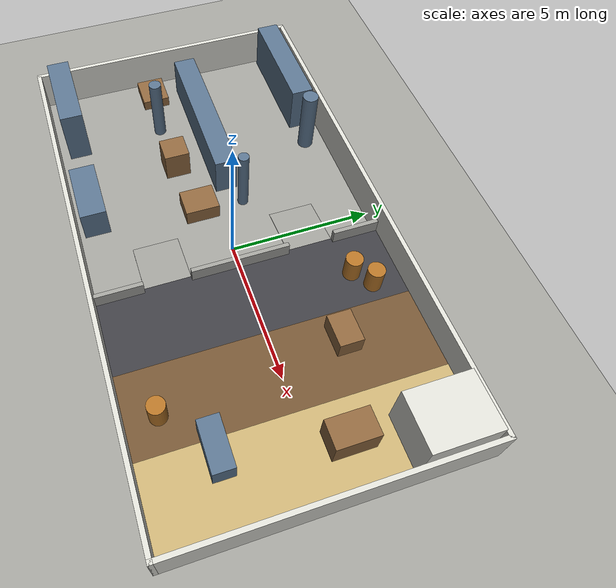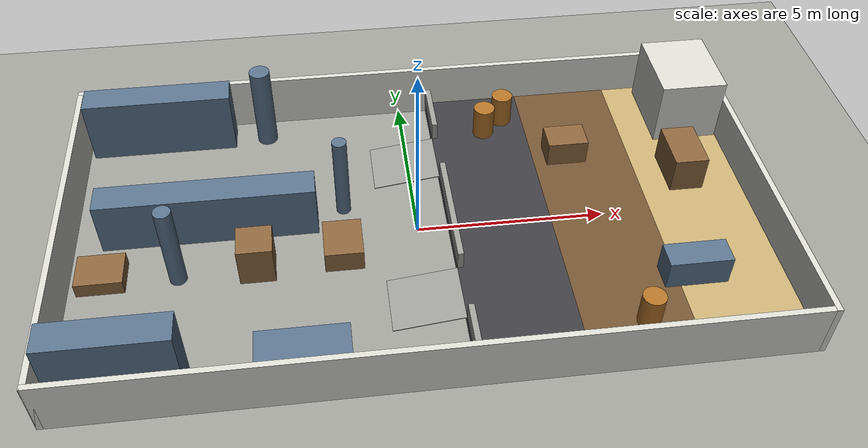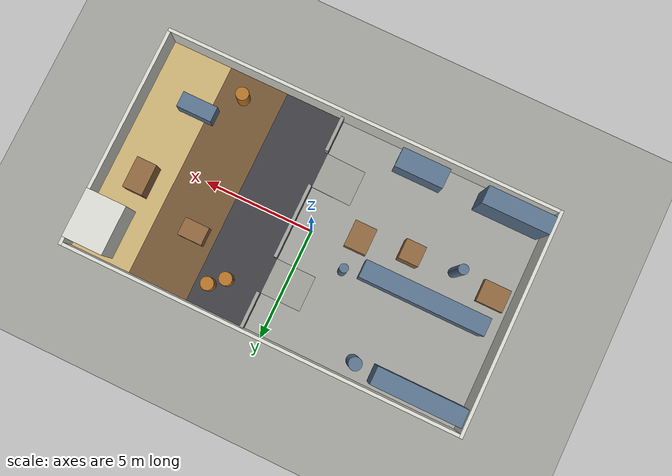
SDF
<sdf version='1.9'>
  <world name='default'>

    <plugin filename="gz-sim-physics-system" name="gz::sim::systems::Physics"/>
    <plugin filename="gz-sim-scene-broadcaster-system" name="gz::sim::systems::SceneBroadcaster"/>
    <plugin filename="gz-sim-user-commands-system" name="gz::sim::systems::UserCommands"/>
    <plugin filename="gz-sim-sensors-system" name="gz::sim::systems::Sensors">
      <render_engine>ogre2</render_engine>
    </plugin>
    <plugin filename="gz-sim-contact-system" name="gz::sim::systems::Contact"/>
    <plugin filename="gz-sim-imu-system" name="gz::sim::systems::Imu"/>

    <gravity>0 0 -9.8</gravity>
    <physics name='default_physics' type='ode'>
      <max_step_size>0.001</max_step_size>
      <real_time_factor>1.0</real_time_factor>
      <real_time_update_rate>1000</real_time_update_rate>
    </physics>

    <scene>
      <ambient>0.55 0.55 0.55 1</ambient>
      <background>0.75 0.80 0.85 1</background>
      <shadows>true</shadows>
    </scene>

    <light type='directional' name='sun'>
      <cast_shadows>true</cast_shadows>
      <pose>0 0 10 0 0 0</pose>
      <diffuse>0.9 0.9 0.9 1</diffuse>
      <specular>0.2 0.2 0.2 1</specular>
      <attenuation>
        <range>1000</range>
        <constant>0.9</constant>
        <linear>0.01</linear>
        <quadratic>0.001</quadratic>
      </attenuation>
      <direction>-0.4 0.3 -0.9</direction>
    </light>

    <model name='ground_plane'>
      <static>true</static>
      <link name='link'>
        <collision name='collision'>
          <geometry><plane><normal>0 0 1</normal><size>100 100</size></plane></geometry>
          <surface>
            <friction>
              <ode>
                <mu>1.0</mu>
                <mu2>1.0</mu2>
              </ode>
            </friction>
          </surface>
        </collision>
        <visual name='visual'>
          <geometry><plane><normal>0 0 1</normal><size>100 100</size></plane></geometry>
          <material>
            <ambient>0.310 0.310 0.300 1</ambient>
            <diffuse>0.620 0.620 0.600 1</diffuse>
            <specular>0.05 0.05 0.05 1</specular>
          </material>
        </visual>
      </link>
    </model>

    <model name='wall_west'>
      <static>true</static>
      <pose>-9.00000 0.00000 0.75000 0 0.000000 0</pose>
      <link name='link'>
        <collision name='collision'>
          <geometry><box><size>0.15000 10.15000 1.50000</size></box></geometry>
          <surface>
            <friction>
              <ode>
                <mu>1.0</mu>
                <mu2>1.0</mu2>
              </ode>
            </friction>
          </surface>
        </collision>
        <visual name='visual'>
          <geometry><box><size>0.15000 10.15000 1.50000</size></box></geometry>
          <material>
            <ambient>0.425 0.425 0.410 1</ambient>
            <diffuse>0.850 0.850 0.820 1</diffuse>
            <specular>0.1 0.1 0.1 1</specular>
          </material>
        </visual>
      </link>
    </model>
    <model name='wall_east'>
      <static>true</static>
      <pose>9.00000 0.00000 0.75000 0 0.000000 0</pose>
      <link name='link'>
        <collision name='collision'>
          <geometry><box><size>0.15000 10.15000 1.50000</size></box></geometry>
          <surface>
            <friction>
              <ode>
                <mu>1.0</mu>
                <mu2>1.0</mu2>
              </ode>
            </friction>
          </surface>
        </collision>
        <visual name='visual'>
          <geometry><box><size>0.15000 10.15000 1.50000</size></box></geometry>
          <material>
            <ambient>0.425 0.425 0.410 1</ambient>
            <diffuse>0.850 0.850 0.820 1</diffuse>
            <specular>0.1 0.1 0.1 1</specular>
          </material>
        </visual>
      </link>
    </model>
    <model name='wall_south'>
      <static>true</static>
      <pose>0.00000 -5.00000 0.75000 0 0.000000 0</pose>
      <link name='link'>
        <collision name='collision'>
          <geometry><box><size>18.15000 0.15000 1.50000</size></box></geometry>
          <surface>
            <friction>
              <ode>
                <mu>1.0</mu>
                <mu2>1.0</mu2>
              </ode>
            </friction>
          </surface>
        </collision>
        <visual name='visual'>
          <geometry><box><size>18.15000 0.15000 1.50000</size></box></geometry>
          <material>
            <ambient>0.425 0.425 0.410 1</ambient>
            <diffuse>0.850 0.850 0.820 1</diffuse>
            <specular>0.1 0.1 0.1 1</specular>
          </material>
        </visual>
      </link>
    </model>
    <model name='wall_north'>
      <static>true</static>
      <pose>0.00000 5.00000 0.75000 0 0.000000 0</pose>
      <link name='link'>
        <collision name='collision'>
          <geometry><box><size>18.15000 0.15000 1.50000</size></box></geometry>
          <surface>
            <friction>
              <ode>
                <mu>1.0</mu>
                <mu2>1.0</mu2>
              </ode>
            </friction>
          </surface>
        </collision>
        <visual name='visual'>
          <geometry><box><size>18.15000 0.15000 1.50000</size></box></geometry>
          <material>
            <ambient>0.425 0.425 0.410 1</ambient>
            <diffuse>0.850 0.850 0.820 1</diffuse>
            <specular>0.1 0.1 0.1 1</specular>
          </material>
        </visual>
      </link>
    </model>
    <model name='ramp_north'>
      <static>true</static>
      <pose>-0.09857 2.50000 0.14021 0 -0.143339 0</pose>
      <link name='link'>
        <collision name='collision'>
          <geometry><box><size>1.81865 1.60000 0.02000</size></box></geometry>
          <surface>
            <friction>
              <ode>
                <mu>1.0</mu>
                <mu2>1.0</mu2>
              </ode>
            </friction>
          </surface>
        </collision>
        <visual name='visual'>
          <geometry><box><size>1.81865 1.60000 0.02000</size></box></geometry>
          <material>
            <ambient>0.310 0.310 0.300 1</ambient>
            <diffuse>0.620 0.620 0.600 1</diffuse>
            <specular>0.1 0.1 0.1 1</specular>
          </material>
        </visual>
      </link>
    </model>
    <model name='ramp_south'>
      <static>true</static>
      <pose>-0.09857 -2.50000 0.14021 0 -0.143339 0</pose>
      <link name='link'>
        <collision name='collision'>
          <geometry><box><size>1.81865 1.60000 0.02000</size></box></geometry>
          <surface>
            <friction>
              <ode>
                <mu>1.0</mu>
                <mu2>1.0</mu2>
              </ode>
            </friction>
          </surface>
        </collision>
        <visual name='visual'>
          <geometry><box><size>1.81865 1.60000 0.02000</size></box></geometry>
          <material>
            <ambient>0.310 0.310 0.300 1</ambient>
            <diffuse>0.620 0.620 0.600 1</diffuse>
            <specular>0.1 0.1 0.1 1</specular>
          </material>
        </visual>
      </link>
    </model>
    <model name='yard_asphalt'>
      <static>true</static>
      <pose>2.15000 0.00000 0.14000 0 0.000000 0</pose>
      <link name='link'>
        <collision name='collision'>
          <geometry><box><size>2.70000 10.00000 0.28000</size></box></geometry>
          <surface>
            <friction>
              <ode>
                <mu>0.9</mu>
                <mu2>0.9</mu2>
              </ode>
            </friction>
          </surface>
        </collision>
        <visual name='visual'>
          <geometry><box><size>2.70000 10.00000 0.28000</size></box></geometry>
          <material>
            <ambient>0.120 0.120 0.130 1</ambient>
            <diffuse>0.240 0.240 0.260 1</diffuse>
            <specular>0.1 0.1 0.1 1</specular>
          </material>
        </visual>
      </link>
    </model>
    <model name='yard_dirt'>
      <static>true</static>
      <pose>4.85000 0.00000 0.14000 0 0.000000 0</pose>
      <link name='link'>
        <collision name='collision'>
          <geometry><box><size>2.70000 10.00000 0.28000</size></box></geometry>
          <surface>
            <friction>
              <ode>
                <mu>0.55</mu>
                <mu2>0.55</mu2>
              </ode>
            </friction>
          </surface>
        </collision>
        <visual name='visual'>
          <geometry><box><size>2.70000 10.00000 0.28000</size></box></geometry>
          <material>
            <ambient>0.225 0.165 0.100 1</ambient>
            <diffuse>0.450 0.330 0.200 1</diffuse>
            <specular>0.1 0.1 0.1 1</specular>
          </material>
        </visual>
      </link>
    </model>
    <model name='yard_sand'>
      <static>true</static>
      <pose>7.60000 0.00000 0.14000 0 0.000000 0</pose>
      <link name='link'>
        <collision name='collision'>
          <geometry><box><size>2.80000 10.00000 0.28000</size></box></geometry>
          <surface>
            <friction>
              <ode>
                <mu>0.3</mu>
                <mu2>0.3</mu2>
              </ode>
            </friction>
          </surface>
        </collision>
        <visual name='visual'>
          <geometry><box><size>2.80000 10.00000 0.28000</size></box></geometry>
          <material>
            <ambient>0.390 0.340 0.225 1</ambient>
            <diffuse>0.780 0.680 0.450 1</diffuse>
            <specular>0.1 0.1 0.1 1</specular>
          </material>
        </visual>
      </link>
    </model>
    <model name='yard_kerb_0'>
      <static>true</static>
      <pose>0.87500 -4.15000 0.53000 0 0.000000 0</pose>
      <link name='link'>
        <collision name='collision'>
          <geometry><box><size>0.15000 1.70000 0.50000</size></box></geometry>
          <surface>
            <friction>
              <ode>
                <mu>1.0</mu>
                <mu2>1.0</mu2>
              </ode>
            </friction>
          </surface>
        </collision>
        <visual name='visual'>
          <geometry><box><size>0.15000 1.70000 0.50000</size></box></geometry>
          <material>
            <ambient>0.310 0.310 0.300 1</ambient>
            <diffuse>0.620 0.620 0.600 1</diffuse>
            <specular>0.1 0.1 0.1 1</specular>
          </material>
        </visual>
      </link>
    </model>
    <model name='yard_kerb_1'>
      <static>true</static>
      <pose>0.87500 0.00000 0.53000 0 0.000000 0</pose>
      <link name='link'>
        <collision name='collision'>
          <geometry><box><size>0.15000 3.40000 0.50000</size></box></geometry>
          <surface>
            <friction>
              <ode>
                <mu>1.0</mu>
                <mu2>1.0</mu2>
              </ode>
            </friction>
          </surface>
        </collision>
        <visual name='visual'>
          <geometry><box><size>0.15000 3.40000 0.50000</size></box></geometry>
          <material>
            <ambient>0.310 0.310 0.300 1</ambient>
            <diffuse>0.620 0.620 0.600 1</diffuse>
            <specular>0.1 0.1 0.1 1</specular>
          </material>
        </visual>
      </link>
    </model>
    <model name='yard_kerb_2'>
      <static>true</static>
      <pose>0.87500 4.15000 0.53000 0 0.000000 0</pose>
      <link name='link'>
        <collision name='collision'>
          <geometry><box><size>0.15000 1.70000 0.50000</size></box></geometry>
          <surface>
            <friction>
              <ode>
                <mu>1.0</mu>
                <mu2>1.0</mu2>
              </ode>
            </friction>
          </surface>
        </collision>
        <visual name='visual'>
          <geometry><box><size>0.15000 1.70000 0.50000</size></box></geometry>
          <material>
            <ambient>0.310 0.310 0.300 1</ambient>
            <diffuse>0.620 0.620 0.600 1</diffuse>
            <specular>0.1 0.1 0.1 1</specular>
          </material>
        </visual>
      </link>
    </model>
    <model name='rack_a'>
      <static>true</static>
      <pose>-6.80000 4.30000 0.90000 0 0.000000 0</pose>
      <link name='link'>
        <collision name='collision'>
          <geometry><box><size>4.00000 0.80000 1.80000</size></box></geometry>
          <surface>
            <friction>
              <ode>
                <mu>1.0</mu>
                <mu2>1.0</mu2>
              </ode>
            </friction>
          </surface>
        </collision>
        <visual name='visual'>
          <geometry><box><size>4.00000 0.80000 1.80000</size></box></geometry>
          <material>
            <ambient>0.175 0.225 0.275 1</ambient>
            <diffuse>0.350 0.450 0.550 1</diffuse>
            <specular>0.1 0.1 0.1 1</specular>
          </material>
        </visual>
      </link>
    </model>
    <model name='rack_b'>
      <static>true</static>
      <pose>-5.40000 0.60000 0.75000 0 0.000000 0</pose>
      <link name='link'>
        <collision name='collision'>
          <geometry><box><size>5.60000 0.80000 1.50000</size></box></geometry>
          <surface>
            <friction>
              <ode>
                <mu>1.0</mu>
                <mu2>1.0</mu2>
              </ode>
            </friction>
          </surface>
        </collision>
        <visual name='visual'>
          <geometry><box><size>5.60000 0.80000 1.50000</size></box></geometry>
          <material>
            <ambient>0.175 0.225 0.275 1</ambient>
            <diffuse>0.350 0.450 0.550 1</diffuse>
            <specular>0.1 0.1 0.1 1</specular>
          </material>
        </visual>
      </link>
    </model>
    <model name='rack_c'>
      <static>true</static>
      <pose>-7.30000 -4.20000 1.05000 0 0.000000 0</pose>
      <link name='link'>
        <collision name='collision'>
          <geometry><box><size>3.00000 0.80000 2.10000</size></box></geometry>
          <surface>
            <friction>
              <ode>
                <mu>1.0</mu>
                <mu2>1.0</mu2>
              </ode>
            </friction>
          </surface>
        </collision>
        <visual name='visual'>
          <geometry><box><size>3.00000 0.80000 2.10000</size></box></geometry>
          <material>
            <ambient>0.175 0.225 0.275 1</ambient>
            <diffuse>0.350 0.450 0.550 1</diffuse>
            <specular>0.1 0.1 0.1 1</specular>
          </material>
        </visual>
      </link>
    </model>
    <model name='rack_d'>
      <static>true</static>
      <pose>-3.10000 -4.30000 0.60000 0 0.000000 0</pose>
      <link name='link'>
        <collision name='collision'>
          <geometry><box><size>2.20000 0.90000 1.20000</size></box></geometry>
          <surface>
            <friction>
              <ode>
                <mu>1.0</mu>
                <mu2>1.0</mu2>
              </ode>
            </friction>
          </surface>
        </collision>
        <visual name='visual'>
          <geometry><box><size>2.20000 0.90000 1.20000</size></box></geometry>
          <material>
            <ambient>0.175 0.225 0.275 1</ambient>
            <diffuse>0.350 0.450 0.550 1</diffuse>
            <specular>0.1 0.1 0.1 1</specular>
          </material>
        </visual>
      </link>
    </model>
    <model name='pallet_1'>
      <static>true</static>
      <pose>-8.10000 -0.80000 0.20000 0 0.000000 0</pose>
      <link name='link'>
        <collision name='collision'>
          <geometry><box><size>1.20000 1.00000 0.40000</size></box></geometry>
          <surface>
            <friction>
              <ode>
                <mu>1.0</mu>
                <mu2>1.0</mu2>
              </ode>
            </friction>
          </surface>
        </collision>
        <visual name='visual'>
          <geometry><box><size>1.20000 1.00000 0.40000</size></box></geometry>
          <material>
            <ambient>0.275 0.200 0.120 1</ambient>
            <diffuse>0.550 0.400 0.240 1</diffuse>
            <specular>0.1 0.1 0.1 1</specular>
          </material>
        </visual>
      </link>
    </model>
    <model name='pallet_2'>
      <static>true</static>
      <pose>-2.00000 -0.60000 0.30000 0 0.000000 0</pose>
      <link name='link'>
        <collision name='collision'>
          <geometry><box><size>1.00000 1.20000 0.60000</size></box></geometry>
          <surface>
            <friction>
              <ode>
                <mu>1.0</mu>
                <mu2>1.0</mu2>
              </ode>
            </friction>
          </surface>
        </collision>
        <visual name='visual'>
          <geometry><box><size>1.00000 1.20000 0.60000</size></box></geometry>
          <material>
            <ambient>0.275 0.200 0.120 1</ambient>
            <diffuse>0.550 0.400 0.240 1</diffuse>
            <specular>0.1 0.1 0.1 1</specular>
          </material>
        </visual>
      </link>
    </model>
    <model name='crate_stack'>
      <static>true</static>
      <pose>-4.20000 -0.90000 0.55000 0 0.000000 0</pose>
      <link name='link'>
        <collision name='collision'>
          <geometry><box><size>0.90000 0.90000 1.10000</size></box></geometry>
          <surface>
            <friction>
              <ode>
                <mu>1.0</mu>
                <mu2>1.0</mu2>
              </ode>
            </friction>
          </surface>
        </collision>
        <visual name='visual'>
          <geometry><box><size>0.90000 0.90000 1.10000</size></box></geometry>
          <material>
            <ambient>0.275 0.200 0.120 1</ambient>
            <diffuse>0.550 0.400 0.240 1</diffuse>
            <specular>0.1 0.1 0.1 1</specular>
          </material>
        </visual>
      </link>
    </model>
    <model name='yard_crate_a'>
      <static>true</static>
      <pose>4.40000 2.20000 0.63000 0 0.000000 0</pose>
      <link name='link'>
        <collision name='collision'>
          <geometry><box><size>1.10000 0.80000 0.70000</size></box></geometry>
          <surface>
            <friction>
              <ode>
                <mu>1.0</mu>
                <mu2>1.0</mu2>
              </ode>
            </friction>
          </surface>
        </collision>
        <visual name='visual'>
          <geometry><box><size>1.10000 0.80000 0.70000</size></box></geometry>
          <material>
            <ambient>0.275 0.200 0.120 1</ambient>
            <diffuse>0.550 0.400 0.240 1</diffuse>
            <specular>0.1 0.1 0.1 1</specular>
          </material>
        </visual>
      </link>
    </model>
    <model name='yard_crate_b'>
      <static>true</static>
      <pose>7.40000 1.10000 0.78000 0 0.000000 0</pose>
      <link name='link'>
        <collision name='collision'>
          <geometry><box><size>0.90000 1.40000 1.00000</size></box></geometry>
          <surface>
            <friction>
              <ode>
                <mu>1.0</mu>
                <mu2>1.0</mu2>
              </ode>
            </friction>
          </surface>
        </collision>
        <visual name='visual'>
          <geometry><box><size>0.90000 1.40000 1.00000</size></box></geometry>
          <material>
            <ambient>0.275 0.200 0.120 1</ambient>
            <diffuse>0.550 0.400 0.240 1</diffuse>
            <specular>0.1 0.1 0.1 1</specular>
          </material>
        </visual>
      </link>
    </model>
    <model name='yard_bin'>
      <static>true</static>
      <pose>6.60000 -2.60000 0.68000 0 0.000000 0</pose>
      <link name='link'>
        <collision name='collision'>
          <geometry><box><size>1.60000 0.70000 0.80000</size></box></geometry>
          <surface>
            <friction>
              <ode>
                <mu>1.0</mu>
                <mu2>1.0</mu2>
              </ode>
            </friction>
          </surface>
        </collision>
        <visual name='visual'>
          <geometry><box><size>1.60000 0.70000 0.80000</size></box></geometry>
          <material>
            <ambient>0.175 0.225 0.275 1</ambient>
            <diffuse>0.350 0.450 0.550 1</diffuse>
            <specular>0.1 0.1 0.1 1</specular>
          </material>
        </visual>
      </link>
    </model>
    <model name='yard_shed'>
      <static>true</static>
      <pose>8.00000 3.60000 1.18000 0 0.000000 0</pose>
      <link name='link'>
        <collision name='collision'>
          <geometry><box><size>1.80000 2.20000 1.80000</size></box></geometry>
          <surface>
            <friction>
              <ode>
                <mu>1.0</mu>
                <mu2>1.0</mu2>
              </ode>
            </friction>
          </surface>
        </collision>
        <visual name='visual'>
          <geometry><box><size>1.80000 2.20000 1.80000</size></box></geometry>
          <material>
            <ambient>0.425 0.425 0.410 1</ambient>
            <diffuse>0.850 0.850 0.820 1</diffuse>
            <specular>0.1 0.1 0.1 1</specular>
          </material>
        </visual>
      </link>
    </model>
    <model name='col_a'>
      <static>true</static>
      <pose>-6.20000 -1.00000 1.20000 0 0 0</pose>
      <link name='link'>
        <collision name='collision'>
          <geometry><cylinder><radius>0.22</radius><length>2.4</length></cylinder></geometry>
          <surface>
            <friction>
              <ode>
                <mu>1.0</mu>
                <mu2>1.0</mu2>
              </ode>
            </friction>
          </surface>
        </collision>
        <visual name='visual'>
          <geometry><cylinder><radius>0.22</radius><length>2.4</length></cylinder></geometry>
          <material>
            <ambient>0.175 0.225 0.275 1</ambient>
            <diffuse>0.350 0.450 0.550 1</diffuse>
            <specular>0.1 0.1 0.1 1</specular>
          </material>
        </visual>
      </link>
    </model>
    <model name='col_b'>
      <static>true</static>
      <pose>-3.90000 4.20000 1.20000 0 0 0</pose>
      <link name='link'>
        <collision name='collision'>
          <geometry><cylinder><radius>0.28</radius><length>2.4</length></cylinder></geometry>
          <surface>
            <friction>
              <ode>
                <mu>1.0</mu>
                <mu2>1.0</mu2>
              </ode>
            </friction>
          </surface>
        </collision>
        <visual name='visual'>
          <geometry><cylinder><radius>0.28</radius><length>2.4</length></cylinder></geometry>
          <material>
            <ambient>0.175 0.225 0.275 1</ambient>
            <diffuse>0.350 0.450 0.550 1</diffuse>
            <specular>0.1 0.1 0.1 1</specular>
          </material>
        </visual>
      </link>
    </model>
    <model name='col_c'>
      <static>true</static>
      <pose>-1.90000 1.00000 1.20000 0 0 0</pose>
      <link name='link'>
        <collision name='collision'>
          <geometry><cylinder><radius>0.19</radius><length>2.4</length></cylinder></geometry>
          <surface>
            <friction>
              <ode>
                <mu>1.0</mu>
                <mu2>1.0</mu2>
              </ode>
            </friction>
          </surface>
        </collision>
        <visual name='visual'>
          <geometry><cylinder><radius>0.19</radius><length>2.4</length></cylinder></geometry>
          <material>
            <ambient>0.175 0.225 0.275 1</ambient>
            <diffuse>0.350 0.450 0.550 1</diffuse>
            <specular>0.1 0.1 0.1 1</specular>
          </material>
        </visual>
      </link>
    </model>
    <model name='drum_a'>
      <static>true</static>
      <pose>2.30000 3.40000 0.73000 0 0 0</pose>
      <link name='link'>
        <collision name='collision'>
          <geometry><cylinder><radius>0.29</radius><length>0.9</length></cylinder></geometry>
          <surface>
            <friction>
              <ode>
                <mu>1.0</mu>
                <mu2>1.0</mu2>
              </ode>
            </friction>
          </surface>
        </collision>
        <visual name='visual'>
          <geometry><cylinder><radius>0.29</radius><length>0.9</length></cylinder></geometry>
          <material>
            <ambient>0.350 0.225 0.075 1</ambient>
            <diffuse>0.700 0.450 0.150 1</diffuse>
            <specular>0.1 0.1 0.1 1</specular>
          </material>
        </visual>
      </link>
    </model>
    <model name='drum_b'>
      <static>true</static>
      <pose>2.90000 3.90000 0.73000 0 0 0</pose>
      <link name='link'>
        <collision name='collision'>
          <geometry><cylinder><radius>0.29</radius><length>0.9</length></cylinder></geometry>
          <surface>
            <friction>
              <ode>
                <mu>1.0</mu>
                <mu2>1.0</mu2>
              </ode>
            </friction>
          </surface>
        </collision>
        <visual name='visual'>
          <geometry><cylinder><radius>0.29</radius><length>0.9</length></cylinder></geometry>
          <material>
            <ambient>0.350 0.225 0.075 1</ambient>
            <diffuse>0.700 0.450 0.150 1</diffuse>
            <specular>0.1 0.1 0.1 1</specular>
          </material>
        </visual>
      </link>
    </model>
    <model name='drum_c'>
      <static>true</static>
      <pose>5.10000 -3.90000 0.73000 0 0 0</pose>
      <link name='link'>
        <collision name='collision'>
          <geometry><cylinder><radius>0.29</radius><length>0.9</length></cylinder></geometry>
          <surface>
            <friction>
              <ode>
                <mu>1.0</mu>
                <mu2>1.0</mu2>
              </ode>
            </friction>
          </surface>
        </collision>
        <visual name='visual'>
          <geometry><cylinder><radius>0.29</radius><length>0.9</length></cylinder></geometry>
          <material>
            <ambient>0.350 0.225 0.075 1</ambient>
            <diffuse>0.700 0.450 0.150 1</diffuse>
            <specular>0.1 0.1 0.1 1</specular>
          </material>
        </visual>
      </link>
    </model>

  </world>
</sdf>
